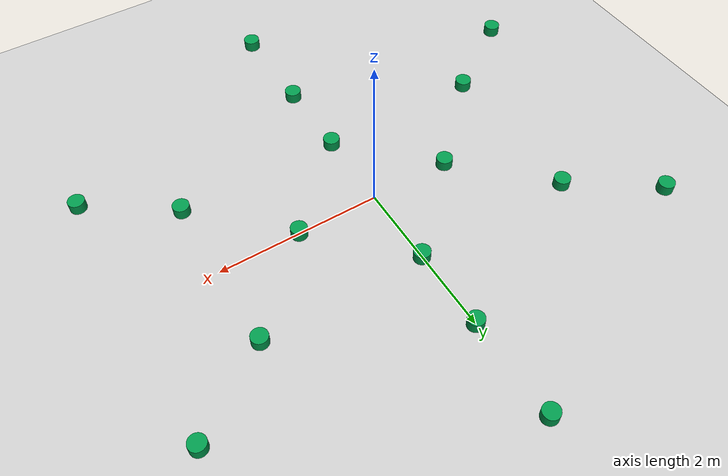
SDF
<sdf version="1.4">
  <world name="default">

    <scene>
      <ambient>0.4 0.4 0.4 1</ambient>
      <background>0.7 0.7 0.7 1</background>
      <shadows>true</shadows>
    </scene>

    <!-- A global light source -->
    <include>
      <uri>model://sun</uri>
    </include>

    <!-- A ground plane -->
    <include>
      <uri>model://ground_plane</uri>
    </include>

    <physics type="ode">
      <real_time_update_rate>1000.0</real_time_update_rate>
      <max_step_size>0.001</max_step_size>
      <real_time_factor>1</real_time_factor>
      <ode>
        <solver>
          <type>quick</type>
          <iters>150</iters>
          <precon_iters>0</precon_iters>
          <sor>1.400000</sor>
          <use_dynamic_moi_rescaling>1</use_dynamic_moi_rescaling>
        </solver>
        <constraints>
          <cfm>0.00001</cfm>
          <erp>0.2</erp>
          <contact_max_correcting_vel>2000.000000</contact_max_correcting_vel>
          <contact_surface_layer>0.01000</contact_surface_layer>
        </constraints>
      </ode>
    </physics>

    <model name="obstacle_1">
      <pose>3 -1.7 0 0 0 0</pose>
      <link name="link">
        <collision name="collision">
          <geometry>
            <cylinder>
              <radius>0.1</radius>
              <length>0.25</length>
            </cylinder>
          </geometry>
        </collision>

        <visual name="visual">
          <geometry>
            <cylinder>
              <radius>0.1</radius>
              <length>0.25</length>
            </cylinder>
          </geometry>
          <material>
              <ambient>0 0.6 0.3 1</ambient> <!-- 环境光颜色，绿色 -->
              <diffuse>0 0.6 0.3 1</diffuse> <!-- 漫反射颜色，绿色 -->
              <specular>0.1 0.1 0.1 1</specular> <!-- 镜面反射颜色，微光 -->
          </material>
        </visual>
      </link>
    </model>

    <model name="obstacle_2">
      <pose>3.0 1.7 0 0 0 0</pose>
      <link name="link">
        <collision name="collision">
          <geometry>
            <cylinder>
              <radius>0.1</radius>
              <length>0.25</length>
            </cylinder>
          </geometry>
        </collision>

        <visual name="visual">
          <geometry>
            <cylinder>
              <radius>0.1</radius>
              <length>0.25</length>
            </cylinder>
          </geometry>
          <material>
              <ambient>0 0.6 0.3 1</ambient> <!-- 环境光颜色，绿色 -->
              <diffuse>0 0.6 0.3 1</diffuse> <!-- 漫反射颜色，绿色 -->
              <specular>0.1 0.1 0.1 1</specular> <!-- 镜面反射颜色，微光 -->
          </material>
        </visual>
      </link>
    </model>

    <model name="obstacle_3">
      <pose>-3 1.7 0 0 0 0</pose>
      <link name="link">
        <collision name="collision">
          <geometry>
            <cylinder>
              <radius>0.1</radius>
              <length>0.25</length>
            </cylinder>
          </geometry>
        </collision>

        <visual name="visual">
          <geometry>
            <cylinder>
              <radius>0.1</radius>
              <length>0.25</length>
            </cylinder>
          </geometry>
          <material>
              <ambient>0 0.6 0.3 1</ambient> <!-- 环境光颜色，绿色 -->
              <diffuse>0 0.6 0.3 1</diffuse> <!-- 漫反射颜色，绿色 -->
              <specular>0.1 0.1 0.1 1</specular> <!-- 镜面反射颜色，微光 -->
          </material>
        </visual>
      </link>
    </model>

    <model name="obstacle_4">
      <pose>-3 -1.7 0 0 0 0</pose>
      <link name="link">
        <collision name="collision">
          <geometry>
            <cylinder>
              <radius>0.1</radius>
              <length>0.25</length>
            </cylinder>
          </geometry>
        </collision>

        <visual name="visual">
          <geometry>
            <cylinder>
              <radius>0.1</radius>
              <length>0.25</length>
            </cylinder>
          </geometry>
          <material>
              <ambient>0 0.6 0.3 1</ambient> <!-- 环境光颜色，绿色 -->
              <diffuse>0 0.6 0.3 1</diffuse> <!-- 漫反射颜色，绿色 -->
              <specular>0.1 0.1 0.1 1</specular> <!-- 镜面反射颜色，微光 -->
          </material>
        </visual>
      </link>
    </model>

    <model name="obstacle_5">
      <pose>0 3.2 0 0 0 0</pose>
      <link name="link">
        <collision name="collision">
          <geometry>
            <cylinder>
              <radius>0.1</radius>
              <length>0.25</length>
            </cylinder>
          </geometry>
        </collision>

        <visual name="visual">
          <geometry>
            <cylinder>
              <radius>0.1</radius>
              <length>0.25</length>
            </cylinder>
          </geometry>
          <material>
              <ambient>0 0.6 0.3 1</ambient> <!-- 环境光颜色，绿色 -->
              <diffuse>0 0.6 0.3 1</diffuse> <!-- 漫反射颜色，绿色 -->
              <specular>0.1 0.1 0.1 1</specular> <!-- 镜面反射颜色，微光 -->
          </material>
        </visual>
      </link>
    </model>

    <model name="obstacle_6">
      <pose>0 -3.2 0 0 0 0</pose>
      <link name="link">
        <collision name="collision">
          <geometry>
            <cylinder>
              <radius>0.1</radius>
              <length>0.25</length>
            </cylinder>
          </geometry>
        </collision>

        <visual name="visual">
          <geometry>
            <cylinder>
              <radius>0.1</radius>
              <length>0.25</length>
            </cylinder>
          </geometry>
          <material>
              <ambient>0 0.6 0.3 1</ambient> <!-- 环境光颜色，绿色 -->
              <diffuse>0 0.6 0.3 1</diffuse> <!-- 漫反射颜色，绿色 -->
              <specular>0.1 0.1 0.1 1</specular> <!-- 镜面反射颜色，微光 -->
          </material>
        </visual>
      </link>
    </model>

    <model name="obstacle_7">
      <pose>2 -1 0 0 0 0</pose>
      <link name="link">
        <collision name="collision">
          <geometry>
            <cylinder>
              <radius>0.1</radius>
              <length>0.25</length>
            </cylinder>
          </geometry>
        </collision>

        <visual name="visual">
          <geometry>
            <cylinder>
              <radius>0.1</radius>
              <length>0.25</length>
            </cylinder>
          </geometry>
          <material>
              <ambient>0 0.6 0.3 1</ambient> <!-- 环境光颜色，绿色 -->
              <diffuse>0 0.6 0.3 1</diffuse> <!-- 漫反射颜色，绿色 -->
              <specular>0.1 0.1 0.1 1</specular> <!-- 镜面反射颜色，微光 -->
          </material>
        </visual>
      </link>
    </model>

    <model name="obstacle_8">
      <pose>2 1 0 0 0 0</pose>
      <link name="link">
        <collision name="collision">
          <geometry>
            <cylinder>
              <radius>0.1</radius>
              <length>0.25</length>
            </cylinder>
          </geometry>
        </collision>

        <visual name="visual">
          <geometry>
            <cylinder>
              <radius>0.1</radius>
              <length>0.25</length>
            </cylinder>
          </geometry>
          <material>
              <ambient>0 0.6 0.3 1</ambient> <!-- 环境光颜色，绿色 -->
              <diffuse>0 0.6 0.3 1</diffuse> <!-- 漫反射颜色，绿色 -->
              <specular>0.1 0.1 0.1 1</specular> <!-- 镜面反射颜色，微光 -->
          </material>
        </visual>
      </link>
    </model>

    <model name="obstacle_9">
      <pose>-2 1 0 0 0 0</pose>
      <link name="link">
        <collision name="collision">
          <geometry>
            <cylinder>
              <radius>0.1</radius>
              <length>0.25</length>
            </cylinder>
          </geometry>
        </collision>

        <visual name="visual">
          <geometry>
            <cylinder>
              <radius>0.1</radius>
              <length>0.25</length>
            </cylinder>
          </geometry>
          <material>
              <ambient>0 0.6 0.3 1</ambient> <!-- 环境光颜色，绿色 -->
              <diffuse>0 0.6 0.3 1</diffuse> <!-- 漫反射颜色，绿色 -->
              <specular>0.1 0.1 0.1 1</specular> <!-- 镜面反射颜色，微光 -->
          </material>
        </visual>
      </link>
    </model>
    <model name="obstacle_10">
      <pose>-2 -1 0 0 0 0</pose>
      <link name="link">
        <collision name="collision">
          <geometry>
            <cylinder>
              <radius>0.1</radius>
              <length>0.25</length>
            </cylinder>
          </geometry>
        </collision>

        <visual name="visual">
          <geometry>
            <cylinder>
              <radius>0.1</radius>
              <length>0.25</length>
            </cylinder>
          </geometry>
          <material>
              <ambient>0 0.6 0.3 1</ambient> <!-- 环境光颜色，绿色 -->
              <diffuse>0 0.6 0.3 1</diffuse> <!-- 漫反射颜色，绿色 -->
              <specular>0.1 0.1 0.1 1</specular> <!-- 镜面反射颜色，微光 -->
          </material>
        </visual>
      </link>
    </model>

    <model name="obstacle_11">
      <pose>0 2 0 0 0 0</pose>
      <link name="link">
        <collision name="collision">
          <geometry>
            <cylinder>
              <radius>0.1</radius>
              <length>0.25</length>
            </cylinder>
          </geometry>
        </collision>

        <visual name="visual">
          <geometry>
            <cylinder>
              <radius>0.1</radius>
              <length>0.25</length>
            </cylinder>
          </geometry>
          <material>
              <ambient>0 0.6 0.3 1</ambient> <!-- 环境光颜色，绿色 -->
              <diffuse>0 0.6 0.3 1</diffuse> <!-- 漫反射颜色，绿色 -->
              <specular>0.1 0.1 0.1 1</specular> <!-- 镜面反射颜色，微光 -->
          </material>
        </visual>
      </link>
    </model>

    <model name="obstacle_12">
      <pose>0 -2 0 0 0 0</pose>
      <link name="link">
        <collision name="collision">
          <geometry>
            <cylinder>
              <radius>0.1</radius>
              <length>0.25</length>
            </cylinder>
          </geometry>
        </collision>

        <visual name="visual">
          <geometry>
            <cylinder>
              <radius>0.1</radius>
              <length>0.25</length>
            </cylinder>
          </geometry>
          <material>
              <ambient>0 0.6 0.3 1</ambient> <!-- 环境光颜色，绿色 -->
              <diffuse>0 0.6 0.3 1</diffuse> <!-- 漫反射颜色，绿色 -->
              <specular>0.1 0.1 0.1 1</specular> <!-- 镜面反射颜色，微光 -->
          </material>
        </visual>
      </link>
    </model>

    <model name="obstacle_13">
      <pose>0 -1 0 0 0 0</pose>
      <link name="link">
        <collision name="collision">
          <geometry>
            <cylinder>
              <radius>0.1</radius>
              <length>0.25</length>
            </cylinder>
          </geometry>
        </collision>

        <visual name="visual">
          <geometry>
            <cylinder>
              <radius>0.1</radius>
              <length>0.25</length>
            </cylinder>
          </geometry>
          <material>
              <ambient>0 0.6 0.3 1</ambient> <!-- 环境光颜色，绿色 -->
              <diffuse>0 0.6 0.3 1</diffuse> <!-- 漫反射颜色，绿色 -->
              <specular>0.1 0.1 0.1 1</specular> <!-- 镜面反射颜色，微光 -->
          </material>
        </visual>
      </link>
    </model>

    <model name="obstacle_14">
      <pose>0 1 0 0 0 0</pose>
      <link name="link">
        <collision name="collision">
          <geometry>
            <cylinder>
              <radius>0.1</radius>
              <length>0.25</length>
            </cylinder>
          </geometry>
        </collision>

        <visual name="visual">
          <geometry>
            <cylinder>
              <radius>0.1</radius>
              <length>0.25</length>
            </cylinder>
          </geometry>
          <material>
              <ambient>0 0.6 0.3 1</ambient> <!-- 环境光颜色，绿色 -->
              <diffuse>0 0.6 0.3 1</diffuse> <!-- 漫反射颜色，绿色 -->
              <specular>0.1 0.1 0.1 1</specular> <!-- 镜面反射颜色，微光 -->
          </material>
        </visual>
      </link>
    </model>

    <model name="obstacle_15">
      <pose>-1 0 0 0 0 0</pose>
      <link name="link">
        <collision name="collision">
          <geometry>
            <cylinder>
              <radius>0.1</radius>
              <length>0.25</length>
            </cylinder>
          </geometry>
        </collision>

        <visual name="visual">
          <geometry>
            <cylinder>
              <radius>0.1</radius>
              <length>0.25</length>
            </cylinder>
          </geometry>
          <material>
              <ambient>0 0.6 0.3 1</ambient> <!-- 环境光颜色，绿色 -->
              <diffuse>0 0.6 0.3 1</diffuse> <!-- 漫反射颜色，绿色 -->
              <specular>0.1 0.1 0.1 1</specular> <!-- 镜面反射颜色，微光 -->
          </material>
        </visual>
      </link>
    </model>

    <model name="obstacle_16">
      <pose>1 0 0 0 0 0</pose>
      <link name="link">
        <collision name="collision">
          <geometry>
            <cylinder>
              <radius>0.1</radius>
              <length>0.25</length>
            </cylinder>
          </geometry>
        </collision>

        <visual name="visual">
          <geometry>
            <cylinder>
              <radius>0.1</radius>
              <length>0.25</length>
            </cylinder>
          </geometry>
          <material>
              <ambient>0 0.6 0.3 1</ambient> <!-- 环境光颜色，绿色 -->
              <diffuse>0 0.6 0.3 1</diffuse> <!-- 漫反射颜色，绿色 -->
              <specular>0.1 0.1 0.1 1</specular> <!-- 镜面反射颜色，微光 -->
          </material>
        </visual>
      </link>
    </model>
    <gui fullscreen='0'>
      <camera name='user_camera'>
        <pose>2 2 8.0 0 1.5708 1.5708</pose>
        <view_controller>orbit</view_controller>
      </camera>
    </gui>
  </world>
</sdf>
